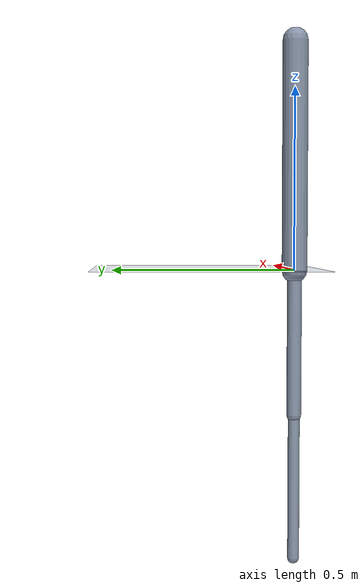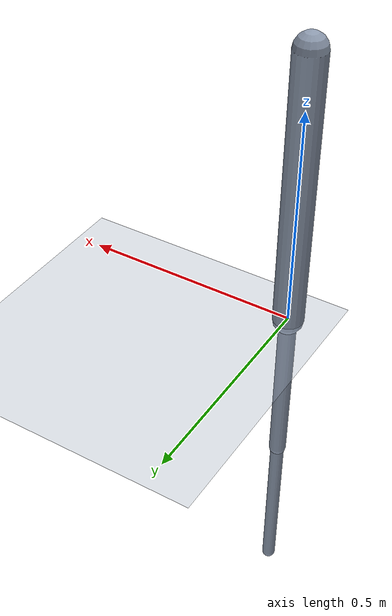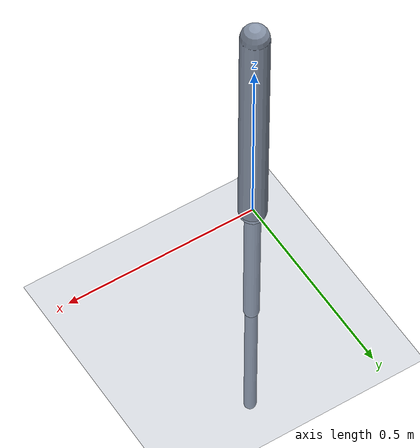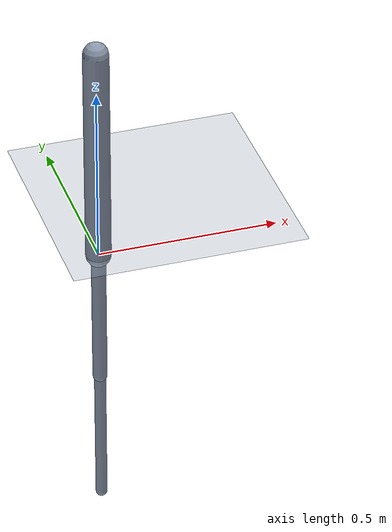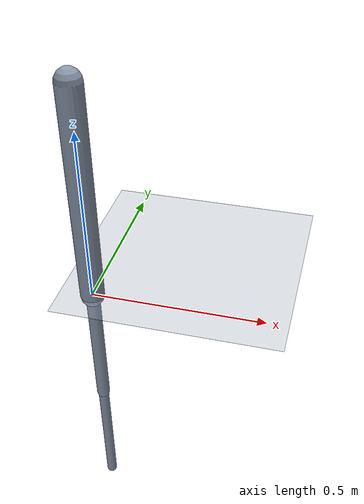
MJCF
<?xml version="1.0"?>
<mujoco model="rabbit">

  <compiler angle="radian" autolimits="true" inertiafromgeom="false"/>

  <option timestep="5e-4" integrator="implicitfast" gravity="0 0 -9.81"
          cone="elliptic" impratio="10"/>

  <default>
    <!-- Link geoms are visual only: contype/conaffinity 0 disables all
         self-collision and any leg/floor contact except at the feet. -->
    <geom type="capsule" size="0.02" contype="0" conaffinity="0"
          rgba="0.55 0.6 0.68 1"/>

    <default class="foot">
      <geom type="sphere" size="0.010" contype="1" conaffinity="1"
            condim="3" friction="1.0 0.005 0.0001"
            solref="0.005 1" solimp="0.95 0.99 0.001"
            rgba="0.85 0.4 0.3 1"/>
    </default>

    <default class="leg">
      <joint type="hinge" axis="0 1 0" damping="0.1"
             armature="0"/>  <!-- FILL IN: N^2 * I_rotor with N = 50 -->
    </default>

    <motor ctrllimited="true" ctrlrange="-35 35" gear="1"/>
  </default>

  <visual>
    <headlight diffuse="0.6 0.6 0.6" ambient="0.35 0.35 0.35"/>
    <map znear="0.01"/>
  </visual>

  <asset>
    <texture name="grid" type="2d" builtin="checker" width="512" height="512"
             rgb1="0.19 0.2 0.22" rgb2="0.23 0.24 0.27"/>
    <material name="grid" texture="grid" texrepeat="8 8" reflectance="0.05"/>
  </asset>

  <worldbody>
    <geom name="floor" type="plane" pos="0 0 0" size="0 0 0.05"
          material="grid" contype="1" conaffinity="1" condim="3"
          friction="1.0 0.005 0.0001"/>

    <body name="Torso" pos="0 0 0">
      <camera name="track" mode="trackcom" pos="0 -3 0" xyaxes="1 0 0 0 0 1"/>
      <joint name="base_slide_x" type="slide" axis="1 0 0"/>
      <joint name="base_slide_z" type="slide" axis="0 0 1"/>
      <joint name="base_pitch_y" type="hinge" axis="0 1 0"/>
      <inertial pos="0 0 0.24" mass="12.0" diaginertia="1.33 1.33 1.33"/>
      <geom name="torso_geom" fromto="0 0 0  0 0 0.625" size="0.035"/>
      <site name="Hip" pos="0 0 0" size="0.015" rgba="1 1 1 0.4"/>

      <body name="LeftThigh" pos="0 0 0">
        <joint name="LeftHip" class="leg"/>
        <inertial pos="0 0 -0.11" mass="6.8" diaginertia="0.47 0.47 0.47"/>
        <geom name="left_thigh_geom" fromto="0 0 0  0 0 -0.4"/>

        <body name="LeftShin" pos="0 0 -0.4">
          <joint name="LeftKnee" class="leg"/>
          <inertial pos="0 0 -0.24" mass="3.2" diaginertia="0.2 0.2 0.2"/>
          <geom name="left_shin_geom" fromto="0 0 0  0 0 -0.4" size="0.016"/>
          <geom name="left_foot_geom" class="foot" pos="0 0 -0.39"/>
          <!-- Guard y2(q) and the impact map key off this site. -->
          <site name="LeftFoot" pos="0 0 -0.4" size="0.01" rgba="1 1 1 0.4"/>
        </body>
      </body>

      <body name="RightThigh" pos="0 0 0">
        <joint name="RightHip" class="leg"/>
        <inertial pos="0 0 -0.11" mass="6.8" diaginertia="0.47 0.47 0.47"/>
        <geom name="right_thigh_geom" fromto="0 0 0  0 0 -0.4"
              rgba="0.42 0.47 0.56 1"/>

        <body name="RightShin" pos="0 0 -0.4">
          <joint name="RightKnee" class="leg"/>
          <inertial pos="0 0 -0.24" mass="3.2" diaginertia="0.2 0.2 0.2"/>
          <geom name="right_shin_geom" fromto="0 0 0  0 0 -0.4" size="0.016"
                rgba="0.42 0.47 0.56 1"/>
          <geom name="right_foot_geom" class="foot" pos="0 0 -0.39"/>
          <site name="RightFoot" pos="0 0 -0.4" size="0.01" rgba="1 1 1 0.4"/>
        </body>
      </body>
    </body>
  </worldbody>

  <!-- ctrl is torque in N*m directly (gear = 1). Order matches
       [LeftHip, LeftKnee, RightHip, RightKnee] = qvel[3:7]. -->
  <actuator>
    <motor name="LeftHip_motor"   joint="LeftHip"/>
    <motor name="LeftKnee_motor"  joint="LeftKnee"/>
    <motor name="RightHip_motor"  joint="RightHip"/>
    <motor name="RightKnee_motor" joint="RightKnee"/>
  </actuator>

  <sensor>
    <framepos name="left_foot_pos"  objtype="site" objname="LeftFoot"/>
    <framepos name="right_foot_pos" objtype="site" objname="RightFoot"/>
  </sensor>

  <!-- Slight knee flexion; feet just touching z = 0. -->
  <keyframe>
    <key name="stand" qpos="0 0.78405326 0 0.20 -0.40 -0.20 0.40"/>
  </keyframe>

</mujoco>
